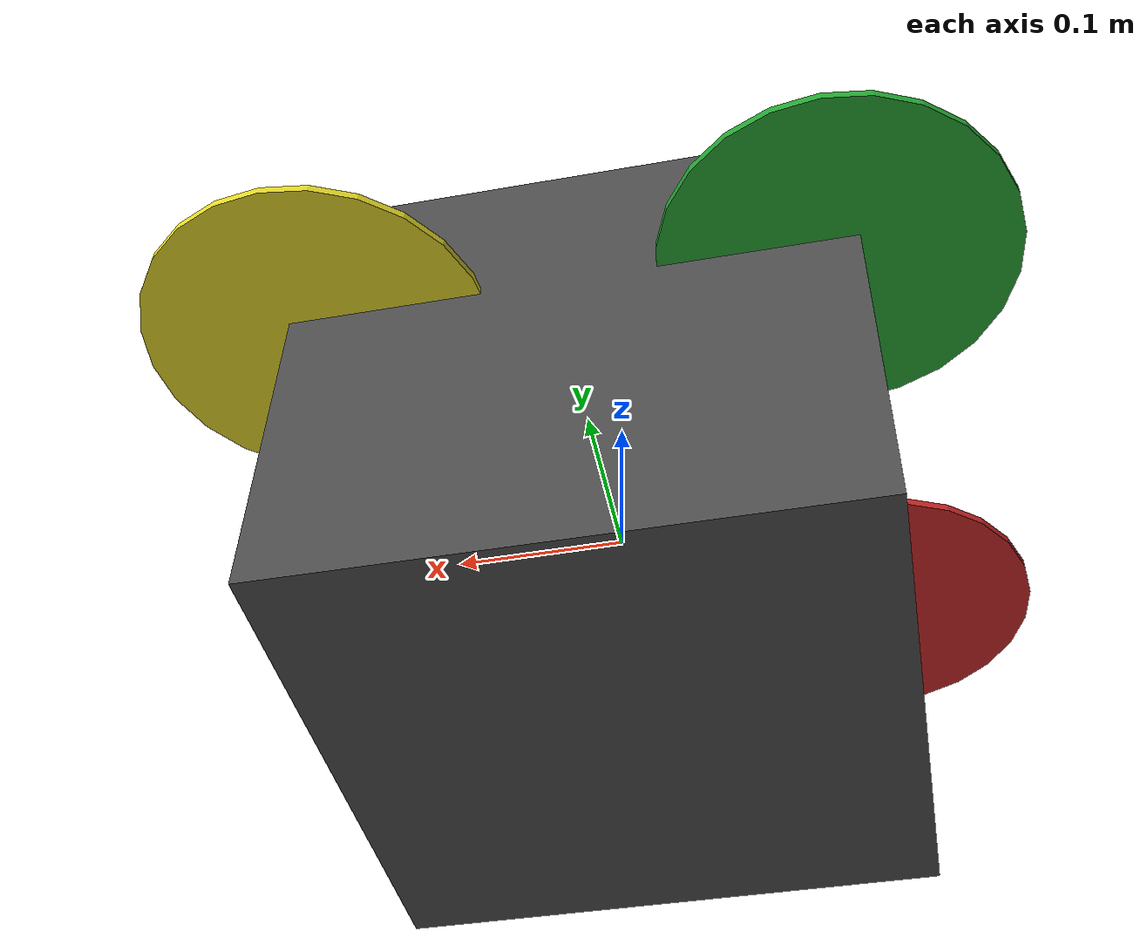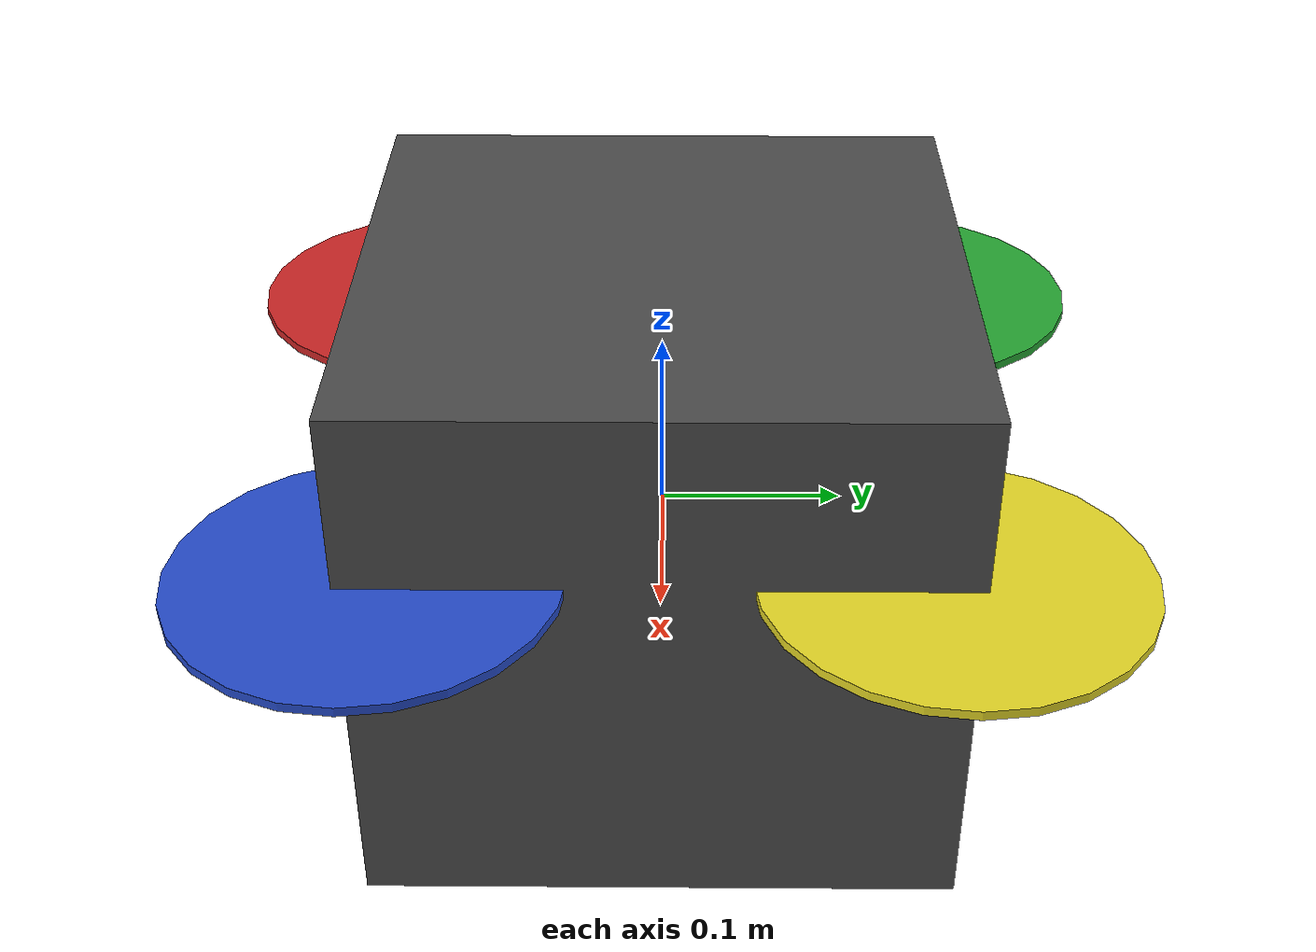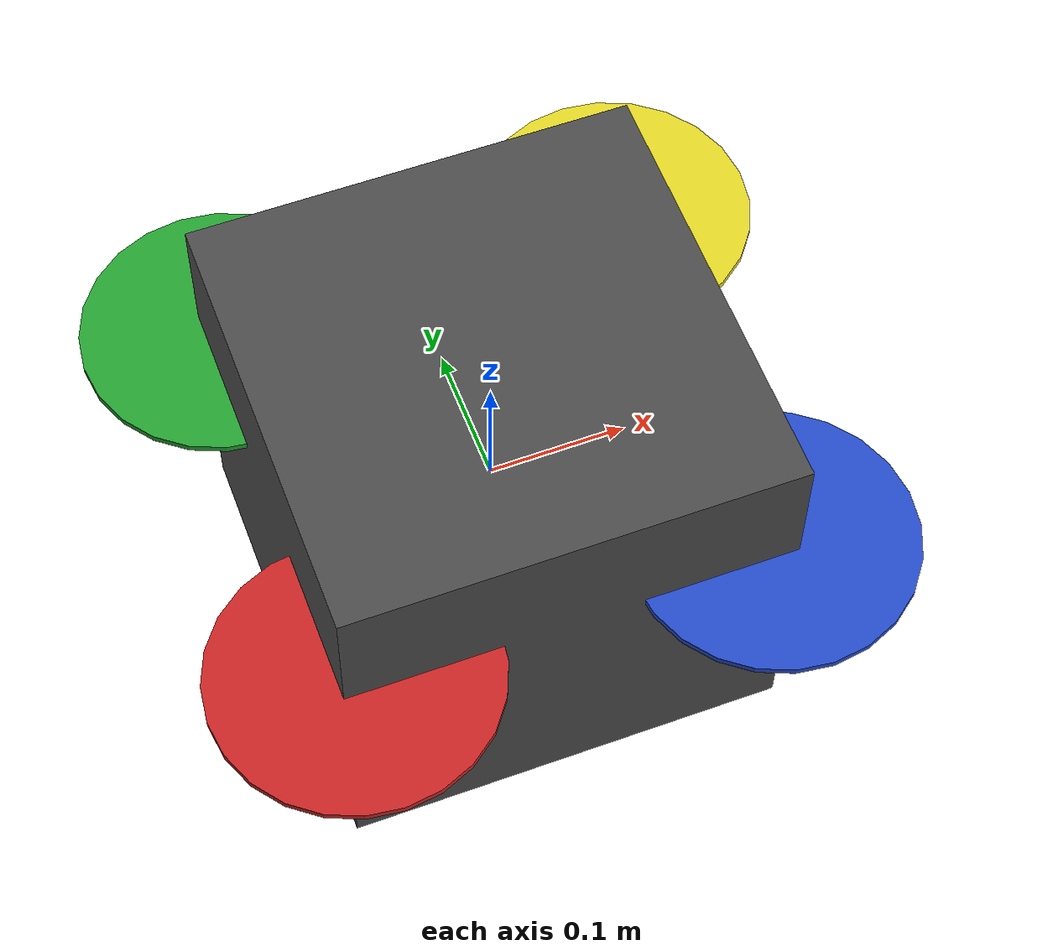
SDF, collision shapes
<?xml version="1.0"?>
<sdf version='1.6'>
  <model name='P300_gimbal_camera'>
    <include>
      <uri>model://P300_basic</uri>
    </include>
    <include>
      <uri>model://Monocular_down</uri>
      <pose>0 0 -0.1 0 1.5707963 0</pose>
    </include>
    <joint name="Monocular_down_joint" type="fixed">
      <child>Monocular_down::link</child>
      <parent>P300_basic::base_link</parent>
      <axis>
        <xyz>0 0 1</xyz>
        <limit>
          <upper>0</upper>
          <lower>0</lower>
        </limit>
      </axis>
    </joint>
    <plugin name='gimbal_controller' filename='libgazebo_gimbal_controller_plugin.so'>
      <joint_yaw>typhoon_h480::cgo3_vertical_arm_joint</joint_yaw>
      <joint_roll>typhoon_h480::cgo3_horizontal_arm_joint</joint_roll>
      <joint_pitch>typhoon_h480::cgo3_camera_joint</joint_pitch>
      <control_gimbal_channels>
        <channel>
          <joint_control_pid>
            <p>0.8</p>
            <i>0.1</i>
            <d>0.02</d>
            <iMax>0</iMax>
            <iMin>0</iMin>
            <cmdMax>1.0</cmdMax>
            <cmdMin>-1.0</cmdMin>
          </joint_control_pid>
          <joint_axis>joint_yaw</joint_axis>
        </channel>
        <channel>
          <joint_control_pid>
            <p>0.8</p>
            <i>0.035</i>
            <d>0.02</d>
            <iMax>0</iMax>
            <iMin>0</iMin>
            <cmdMax>0.3</cmdMax>
            <cmdMin>-0.3</cmdMin>
          </joint_control_pid>
          <joint_axis>joint_roll</joint_axis>
        </channel>
        <channel>
          <joint_control_pid>
            <p>2.068</p>
            <i>0.01245</i>
            <d>0.01</d>
            <iMax>0</iMax>
            <iMin>0</iMin>
            <cmdMax>0.3</cmdMax>
            <cmdMin>-0.3</cmdMin>
          </joint_control_pid>
          <joint_axis>joint_pitch</joint_axis>
        </channel>
      </control_gimbal_channels>
      <gimbal_imu>camera_imu</gimbal_imu>
    </plugin>
  </model>
</sdf>

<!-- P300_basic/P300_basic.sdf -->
<sdf version='1.6'>
  <model name='P300_basic'>
    <!-- P300 body -->
    <link name='base_link'>
      <pose>0 0 0 0 0 0</pose>
      <inertial>
        <pose>0 0 0 0 0 0</pose>
        <mass>1.2</mass>
        <inertia>
          <ixx>0.011</ixx>
          <ixy>0</ixy>
          <ixz>0</ixz>
          <iyy>0.011</iyy>
          <iyz>0</iyz>
          <izz>0.021</izz>
        </inertia>
      </inertial>
      <collision name='base_link_collision'>
        <pose>0 0 0 0 0 0</pose>
        <geometry>
          <box>
            <size>0.32 0.32 0.3</size>
          </box>
        </geometry>
        <surface>
          <contact>
            <ode>
              <min_depth>0.001</min_depth>
              <max_vel>0</max_vel>
            </ode>
          </contact>
          <friction>
            <ode/>
          </friction>
        </surface>
      </collision>
      <visual name='base_link_visual'>
	    <pose>0 0 0 0 0 0</pose>
        <geometry>
          <mesh>
	          <scale>1 1 1</scale>
            <uri>model://P300_basic/meshes/P300.stl</uri>
          </mesh>
        </geometry>
        <material>
          <script>
            <name>Gazebo/DarkGrey</name>
          </script>
        </material>
      </visual>
      <gravity>1</gravity>
      <velocity_decay/>
      <self_collide>0</self_collide>
    </link>
    <link name='imu_link'>
      <pose>0 0 0 0 0 0</pose>
      <inertial>
        <pose>0 0 0 0 0 0</pose>
        <mass>0.015</mass>
        <inertia>
          <ixx>1e-05</ixx>
          <ixy>0</ixy>
          <ixz>0</ixz>
          <iyy>1e-05</iyy>
          <iyz>0</iyz>
          <izz>1e-05</izz>
        </inertia>
      </inertial>
    </link>
    <joint name='imu_joint' type='revolute'>
      <child>imu_link</child>
      <parent>base_link</parent>
      <axis>
        <xyz>1 0 0</xyz>
        <limit>
          <lower>0</lower>
          <upper>0</upper>
          <effort>0</effort>
          <velocity>0</velocity>
        </limit>
        <dynamics>
          <spring_reference>0</spring_reference>
          <spring_stiffness>0</spring_stiffness>
        </dynamics>
        <use_parent_model_frame>1</use_parent_model_frame>
      </axis>
    </joint>
    <!-- P300 rotors -->
    <link name='rotor_0'>
      <pose>0.14745 -0.14525 0.051 0 -0 0</pose>
      <inertial>
        <pose>0 0 0 0 -0 0</pose>
        <mass>0.01</mass>
        <inertia>
          <ixx>1e-06</ixx>
          <ixy>0</ixy>
          <ixz>0</ixz>
          <iyy>2e-04</iyy>
          <iyz>0</iyz>
          <izz>2e-04</izz>
        </inertia>
      </inertial>
      <collision name='rotor_0_collision'>
        <pose>0 0 0 0 0 0</pose>
        <geometry>
          <cylinder>
            <length>0.005</length>
            <radius>0.1</radius>
          </cylinder>
        </geometry>
        <surface>
          <contact>
            <ode/>
          </contact>
          <friction>
            <ode/>
          </friction>
        </surface>
      </collision>
      <visual name='rotor_0_visual'>
        <pose>-0.14745 -0.14525 -0.051 0 0 0</pose>
        <geometry>
          <mesh>
            <scale>1 1 1</scale>
            <uri>model://P300_basic/meshes/prop_ccw.stl</uri>
          </mesh>
        </geometry>
        <material>
          <script>
            <name>Gazebo/Blue</name>
            <uri>file://media/materials/scripts/gazebo.material</uri>
          </script>
        </material>
      </visual>
      <gravity>1</gravity>
      <velocity_decay/>
      <self_collide>0</self_collide>
    </link>
    <joint name='rotor_0_joint' type='revolute'>
      <child>rotor_0</child>
      <parent>base_link</parent>
      <axis>
        <xyz>0 0 1</xyz>
        <limit>
          <lower>-1e+16</lower>
          <upper>1e+16</upper>
        </limit>
        <dynamics>
          <damping>0.004</damping>
        </dynamics>
        <use_parent_model_frame>1</use_parent_model_frame>
      </axis>
      <physics>
        <ode>
          <implicit_spring_damper>1</implicit_spring_damper>
        </ode>
      </physics>
    </joint>
    <link name='rotor_1'>
      <pose>-0.14745 0.14525 0.051 0 0 0</pose>
      <inertial>
        <pose>0 0 0 0 -0 0</pose>
        <mass>0.01</mass>
        <inertia>
          <ixx>1e-06</ixx>
          <ixy>0</ixy>
          <ixz>0</ixz>
          <iyy>2e-04</iyy>
          <iyz>0</iyz>
          <izz>2e-04</izz>
        </inertia>
      </inertial>
      <collision name='rotor_1_collision'>
        <pose>0 0 0 0 -0 0</pose>
        <geometry>
          <cylinder>
            <length>0.005</length>
            <radius>0.1</radius>
          </cylinder>
        </geometry>
        <surface>
          <contact>
            <ode/>
          </contact>
          <friction>
            <ode/>
          </friction>
        </surface>
      </collision>
      <visual name='rotor_1_visual'>
        <pose>-0.14745 -0.14525 -0.051 0 0 0</pose>
        <geometry>
          <mesh>
            <scale>1 1 1</scale>
            <uri>model://P300_basic/meshes/prop_ccw.stl</uri>
          </mesh>
        </geometry>
        <material>
          <script>
            <name>Gazebo/Green</name>
            <uri>file://media/materials/scripts/gazebo.material</uri>
          </script>
        </material>
      </visual>
      <gravity>1</gravity>
      <velocity_decay/>
      <self_collide>0</self_collide>
    </link>
    <joint name='rotor_1_joint' type='revolute'>
      <child>rotor_1</child>
      <parent>base_link</parent>
      <axis>
        <xyz>0 0 1</xyz>
        <limit>
          <lower>-1e+16</lower>
          <upper>1e+16</upper>
        </limit>
        <dynamics>
          <damping>0.004</damping>
        </dynamics>
        <use_parent_model_frame>1</use_parent_model_frame>
      </axis>
      <physics>
        <ode>
          <implicit_spring_damper>1</implicit_spring_damper>
        </ode>
      </physics>
    </joint>
    <link name='rotor_2'>
      <pose>0.14745 0.14525 0.051 0 0 0</pose>
      <inertial>
        <pose>0 0 0 0 -0 0</pose>
        <mass>0.01</mass>
        <inertia>
          <ixx>1e-06</ixx>
          <ixy>0</ixy>
          <ixz>0</ixz>
          <iyy>2e-04</iyy>
          <iyz>0</iyz>
          <izz>2e-04</izz>
        </inertia>
      </inertial>
      <collision name='rotor_2_collision'>
        <pose>0 0 0 0 -0 0</pose>
        <geometry>
          <cylinder>
            <length>0.005</length>
            <radius>0.1</radius>
          </cylinder>
        </geometry>
        <surface>
          <contact>
            <ode/>
          </contact>
          <friction>
            <ode/>
          </friction>
        </surface>
      </collision>
      <visual name='rotor_2_visual'>
        <pose>-0.14745 0.14525 -0.051 0 0 0</pose>
        <geometry>
          <mesh>
            <scale>1 1 1</scale>
            <uri>model://P300_basic/meshes/prop_cw.stl</uri>
          </mesh>
        </geometry>
        <material>
          <script>
            <name>Gazebo/Yellow</name>
            <uri>file://media/materials/scripts/gazebo.material</uri>
          </script>
        </material>
      </visual>
      <gravity>1</gravity>
      <velocity_decay/>
      <self_collide>0</self_collide>
    </link>
    <joint name='rotor_2_joint' type='revolute'>
      <child>rotor_2</child>
      <parent>base_link</parent>
      <axis>
        <xyz>0 0 1</xyz>
        <limit>
          <lower>-1e+16</lower>
          <upper>1e+16</upper>
        </limit>
        <dynamics>
          <damping>0.004</damping>
        </dynamics>
        <use_parent_model_frame>1</use_parent_model_frame>
      </axis>
      <physics>
        <ode>
          <implicit_spring_damper>1</implicit_spring_damper>
        </ode>
      </physics>
    </joint>
    <link name='rotor_3'>
      <pose>-0.14745 -0.14525 0.051 0 0 0</pose>
      <inertial>
        <pose>0 0 0 0 -0 0</pose>
        <mass>0.01</mass>
        <inertia>
          <ixx>1e-06</ixx>
          <ixy>0</ixy>
          <ixz>0</ixz>
          <iyy>2e-04</iyy>
          <iyz>0</iyz>
          <izz>2e-04</izz>
        </inertia>
      </inertial>
      <collision name='rotor_3_collision'>
        <pose>0 0 0 0 -0 0</pose>
        <geometry>
          <cylinder>
            <length>0.005</length>
            <radius>0.1</radius>
          </cylinder>
        </geometry>
        <surface>
          <contact>
            <ode/>
          </contact>
          <friction>
            <ode/>
          </friction>
        </surface>
      </collision>
      <visual name='rotor_3_visual'>
        <pose>-0.14745 0.14525 -0.051 0 0 0</pose>
        <geometry>
          <mesh>
            <scale>1 1 1</scale>
            <uri>model://P300_basic/meshes/prop_cw.stl</uri>
          </mesh>
        </geometry>
        <material>
          <script>
            <name>Gazebo/Red</name>
            <uri>file://media/materials/scripts/gazebo.material</uri>
          </script>
        </material>
      </visual>
      <gravity>1</gravity>
      <velocity_decay/>
      <self_collide>0</self_collide>
    </link>
    <joint name='rotor_3_joint' type='revolute'>
      <child>rotor_3</child>
      <parent>base_link</parent>
      <axis>
        <xyz>0 0 1</xyz>
        <limit>
          <lower>-1e+16</lower>
          <upper>1e+16</upper>
        </limit>
        <dynamics>
          <damping>0.004</damping>
        </dynamics>
        <use_parent_model_frame>1</use_parent_model_frame>
      </axis>
      <physics>
        <ode>
          <implicit_spring_damper>1</implicit_spring_damper>
        </ode>
      </physics>
    </joint>
    <!-- plugins: not konwn -->
    <plugin name='rosbag' filename='libgazebo_multirotor_base_plugin.so'>
      <robotNamespace/>
      <linkName>base_link</linkName>
      <rotorVelocitySlowdownSim>10</rotorVelocitySlowdownSim>
      <motorPubTopic>motor_plugin_test</motorPubTopic>
    </plugin>
    <!-- plugins: motor model plugin for front_right_motor -->
    <!-- 电机模型 = 静态模型 + 动态模型 -->
    <!-- 订阅电机参考转速（来自mavlink_interface插件），然后计算力和力矩并作用于电机 -->
    <plugin name='front_right_motor_model' filename='libgazebo_motor_model.so'>
      <robotNamespace></robotNamespace>
      <jointName>rotor_0_joint</jointName>
      <linkName>rotor_0</linkName>
      <turningDirection>ccw</turningDirection>
      <timeConstantUp>0.0125</timeConstantUp>
      <timeConstantDown>0.025</timeConstantDown>
      <maxRotVelocity>1500</maxRotVelocity>
      <motorConstant>8.54858e-06</motorConstant>
      <momentConstant>0.06</momentConstant>
      <commandSubTopic>/gazebo/command/motor_speed</commandSubTopic>
      <motorNumber>0</motorNumber>
      <rotorDragCoefficient>0.000806428</rotorDragCoefficient>
      <rollingMomentCoefficient>1e-06</rollingMomentCoefficient>
      <motorSpeedPubTopic>/motor_speed/0</motorSpeedPubTopic>
      <rotorVelocitySlowdownSim>10</rotorVelocitySlowdownSim>
    </plugin>
    <!-- plugins: motor model plugin for back_left_motor -->
    <plugin name='back_left_motor_model' filename='libgazebo_motor_model.so'>
      <robotNamespace></robotNamespace>
      <jointName>rotor_1_joint</jointName>
      <linkName>rotor_1</linkName>
      <turningDirection>ccw</turningDirection>
      <timeConstantUp>0.0125</timeConstantUp>
      <timeConstantDown>0.025</timeConstantDown>
      <maxRotVelocity>1500</maxRotVelocity>
      <motorConstant>8.54858e-06</motorConstant>
      <momentConstant>0.06</momentConstant>
      <commandSubTopic>/gazebo/command/motor_speed</commandSubTopic>
      <motorNumber>1</motorNumber>
      <rotorDragCoefficient>0.000806428</rotorDragCoefficient>
      <rollingMomentCoefficient>1e-06</rollingMomentCoefficient>
      <motorSpeedPubTopic>/motor_speed/1</motorSpeedPubTopic>
      <rotorVelocitySlowdownSim>10</rotorVelocitySlowdownSim>
    </plugin>
    <!-- plugins: motor model plugin for front_left_motor -->
    <plugin name='front_left_motor_model' filename='libgazebo_motor_model.so'>
      <robotNamespace></robotNamespace>
      <jointName>rotor_2_joint</jointName>
      <linkName>rotor_2</linkName>
      <turningDirection>cw</turningDirection>
      <timeConstantUp>0.0125</timeConstantUp>
      <timeConstantDown>0.025</timeConstantDown>
      <maxRotVelocity>1500</maxRotVelocity>
      <motorConstant>8.54858e-06</motorConstant>
      <momentConstant>0.06</momentConstant>
      <commandSubTopic>/gazebo/command/motor_speed</commandSubTopic>
      <motorNumber>2</motorNumber>
      <rotorDragCoefficient>0.000806428</rotorDragCoefficient>
      <rollingMomentCoefficient>1e-06</rollingMomentCoefficient>
      <motorSpeedPubTopic>/motor_speed/2</motorSpeedPubTopic>
      <rotorVelocitySlowdownSim>10</rotorVelocitySlowdownSim>
    </plugin>
    <!-- plugins: motor model plugin for back_right_motor -->
    <plugin name='back_right_motor_model' filename='libgazebo_motor_model.so'>
      <robotNamespace></robotNamespace>
      <jointName>rotor_3_joint</jointName>
      <linkName>rotor_3</linkName>
      <turningDirection>cw</turningDirection>
      <timeConstantUp>0.0125</timeConstantUp>
      <timeConstantDown>0.025</timeConstantDown>
      <maxRotVelocity>1500</maxRotVelocity>
      <motorConstant>8.54858e-06</motorConstant>
      <momentConstant>0.06</momentConstant>
      <commandSubTopic>/gazebo/command/motor_speed</commandSubTopic>
      <motorNumber>3</motorNumber>
      <rotorDragCoefficient>0.000806428</rotorDragCoefficient>
      <rollingMomentCoefficient>1e-06</rollingMomentCoefficient>
      <motorSpeedPubTopic>/motor_speed/3</motorSpeedPubTopic>
      <rotorVelocitySlowdownSim>10</rotorVelocitySlowdownSim>
    </plugin>
    <!-- plugins: GPS plugin -->
    <!-- 模拟GPS模型，发布GPS数据（/.../gps）及地面真值（/.../groundtruth） -->
    <plugin name="gps_plugin" filename="libgazebo_gps_plugin.so">
        <robotNamespace></robotNamespace>
        <gpsNoise>false</gpsNoise>
    </plugin>
    <!-- plugins: magnetometer plugin -->
    <plugin name='magnetometer_plugin' filename='libgazebo_magnetometer_plugin.so'>
      <robotNamespace/>
      <pubRate>20</pubRate>
      <noiseDensity>0.0004</noiseDensity>
      <randomWalk>6.4e-06</randomWalk>
      <biasCorrelationTime>600</biasCorrelationTime>
      <magTopic>/mag</magTopic>
    </plugin>
    <!-- plugins: barometer plugin -->
    <plugin name='barometer_plugin' filename='libgazebo_barometer_plugin.so'>
      <robotNamespace/>
      <pubRate>10</pubRate>
      <baroTopic>/baro</baroTopic>
    </plugin>
    <!-- plugins: mavlink plugin -->
    <!-- 使用mavlink消息交互的插件 -->
    <!-- 发布电机参考速度，来自飞控 -->
    <!-- 订阅各传感器数据，发送至飞控 -->
    <plugin name='mavlink_interface' filename='libgazebo_mavlink_interface.so'>
      <robotNamespace/>
      <imuSubTopic>/imu</imuSubTopic>
      <gpsSubTopic>/gps</gpsSubTopic>
      <magSubTopic>/mag</magSubTopic>
      <baroSubTopic>/baro</baroSubTopic>
      <mavlink_addr>INADDR_ANY</mavlink_addr>
      <mavlink_udp_port>14560</mavlink_udp_port>
      <mavlink_tcp_port>4560</mavlink_tcp_port>
      <serialEnabled>false</serialEnabled>
      <serialDevice>/dev/ttyACM0</serialDevice>
      <baudRate>921600</baudRate>
      <qgc_addr>INADDR_ANY</qgc_addr>
      <qgc_udp_port>14550</qgc_udp_port>
      <hil_mode>false</hil_mode>
      <hil_state_level>false</hil_state_level>
      <enable_lockstep>true</enable_lockstep>
      <use_tcp>true</use_tcp>
      <motorSpeedCommandPubTopic>/gazebo/command/motor_speed</motorSpeedCommandPubTopic>
      <control_channels>
        <channel name='rotor1'>
          <input_index>0</input_index>
          <input_offset>0</input_offset>
          <input_scaling>1200</input_scaling>
          <zero_position_disarmed>0</zero_position_disarmed>
          <zero_position_armed>100</zero_position_armed>
          <joint_control_type>velocity</joint_control_type>
        </channel>
        <channel name='rotor2'>
          <input_index>1</input_index>
          <input_offset>0</input_offset>
          <input_scaling>1200</input_scaling>
          <zero_position_disarmed>0</zero_position_disarmed>
          <zero_position_armed>100</zero_position_armed>
          <joint_control_type>velocity</joint_control_type>
        </channel>
        <channel name='rotor3'>
          <input_index>2</input_index>
          <input_offset>0</input_offset>
          <input_scaling>1200</input_scaling>
          <zero_position_disarmed>0</zero_position_disarmed>
          <zero_position_armed>100</zero_position_armed>
          <joint_control_type>velocity</joint_control_type>
        </channel>
        <channel name='rotor4'>
          <input_index>3</input_index>
          <input_offset>0</input_offset>
          <input_scaling>1200</input_scaling>
          <zero_position_disarmed>0</zero_position_disarmed>
          <zero_position_armed>100</zero_position_armed>
          <joint_control_type>velocity</joint_control_type>
        </channel>
      </control_channels>
    </plugin>
    <!-- plugins: imu plugin -->
    <!-- 产生imu数据 -->
    <plugin name='gazebo_imu_plugin' filename='libgazebo_imu_plugin.so'>
      <robotNamespace></robotNamespace>
      <linkName>imu_link</linkName>
      <imuTopic>/imu</imuTopic>
      <gyroscopeNoiseDensity>0.0003394</gyroscopeNoiseDensity>
      <gyroscopeRandomWalk>3.8785e-05</gyroscopeRandomWalk>
      <gyroscopeBiasCorrelationTime>1000.0</gyroscopeBiasCorrelationTime>
      <gyroscopeTurnOnBiasSigma>0.0087</gyroscopeTurnOnBiasSigma>
      <accelerometerNoiseDensity>0.004</accelerometerNoiseDensity>
      <accelerometerRandomWalk>0.006</accelerometerRandomWalk>
      <accelerometerBiasCorrelationTime>300.0</accelerometerBiasCorrelationTime>
      <accelerometerTurnOnBiasSigma>0.196</accelerometerTurnOnBiasSigma>
    </plugin>
    <!-- plugins: libgazebo_ros_p3d -->
    <!-- 发布真值,模拟vicon系统 -->
    <plugin name="p3d_base_controller" filename="libgazebo_ros_p3d.so">
      <alwaysOn>true</alwaysOn>
      <updateRate>50.0</updateRate>
      <bodyName>base_link</bodyName>
      <topicName>/prometheus/ground_truth/p300_basic</topicName>
      <gaussianNoise>0.00</gaussianNoise>
      <frameName>world</frameName>
      <xyzOffsets>0 0 0</xyzOffsets>
      <rpyOffsets>0 0 0</rpyOffsets>
    </plugin>
  </model>
</sdf>

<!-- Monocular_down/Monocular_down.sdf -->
<sdf version='1.6'>
    <model name='Monocular_down'>
    <pose>0.0 0.0 -0.05 0 0 0</pose>
      <link name='link'>
        <inertial>
          <mass>0.015</mass>
          <inertia>
            <ixx>4.15e-6</ixx>
          <ixy>0</ixy>
          <ixz>0</ixz>
          <iyy>2.407e-6</iyy>
          <iyz>0</iyz>
          <izz>2.407e-6</izz>
          </inertia>
        </inertial>
        <collision name='collision'>
          <geometry>
            <box>
              <size>0.01 0.01 0.01</size>
            </box>
          </geometry>
          <max_contacts>10</max_contacts>
          <surface>
            <contact>
              <ode/>
            </contact>
            <bounce/>
            <friction>
              <ode/>
            </friction>
          </surface>
        </collision>
        <visual name='visual'>
          <geometry>
            <box>
              <size>0.01 0.01 0.01</size>
            </box>
          </geometry>
        </visual>
        <sensor name='camera' type='camera'>
          <camera name='__default__'>
            <!-- FOV,120度 -->
            <horizontal_fov>2.0944</horizontal_fov>
            <image>
              <width>1280</width>
              <height>720</height>
            </image>
            <clip>
              <near>0.1</near>
              <far>100</far>
            </clip>
            <noise>
              <type>gaussian</type>
              <mean>0.0</mean>
              <stddev>0.001</stddev>
            </noise>
            <lens>
              <type>custom</type>
              <custom_function>
                <c1>1.05</c1>
                <c2>4</c2>
                <f>1</f>
                <fun>tan</fun>
              </custom_function>
              <scale_to_hfov>1</scale_to_hfov>
              <cutoff_angle>3.1415</cutoff_angle>
            </lens>
          </camera>
          <always_on>1</always_on>
          <update_rate>30</update_rate>
          <visualize>1</visualize>
          <plugin name='camera_plugin' filename='libgazebo_ros_camera.so'>
              <robotNamespace></robotNamespace>
              <alwaysOn>true</alwaysOn>
              <imageTopicName>image_raw</imageTopicName>
              <cameraInfoTopicName>camera_info</cameraInfoTopicName>
              <updateRate>30.0</updateRate>
              <cameraName>Monocular_down</cameraName>
              <frameName>/robot_camera_link</frameName>
              <CxPrime>640</CxPrime>
              <Cx>640</Cx>
              <Cy>360</Cy>
              <hackBaseline>0</hackBaseline>
              <focalLength>369.502083</focalLength>
              <distortionK1>0.0</distortionK1>
              <distortionK2>0.0</distortionK2>
              <distortionK3>0.0</distortionK3>
              <distortionT1>0.0</distortionT1>
              <distortionT2>0.0</distortionT2>
          </plugin>
        </sensor>
        <self_collide>0</self_collide>
        <kinematic>0</kinematic>
      </link>
  </model>
</sdf>
